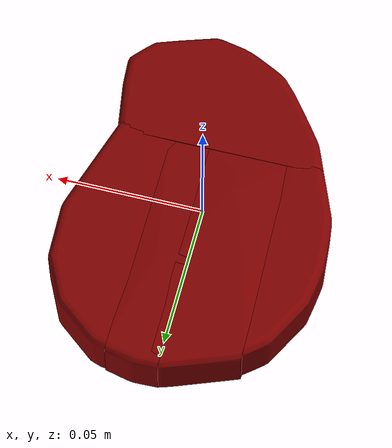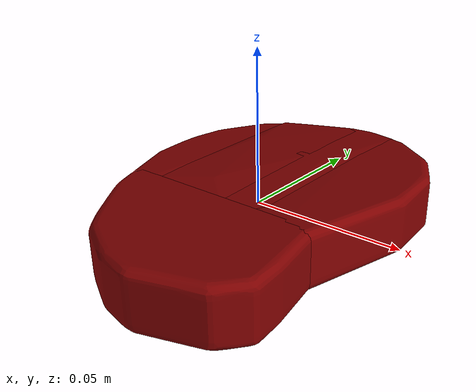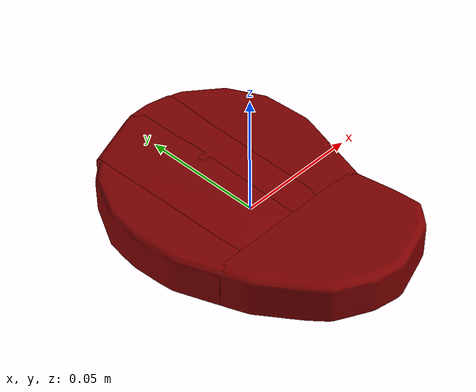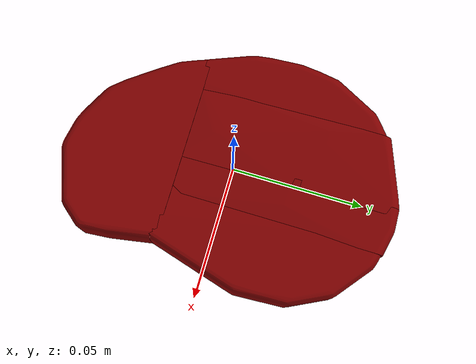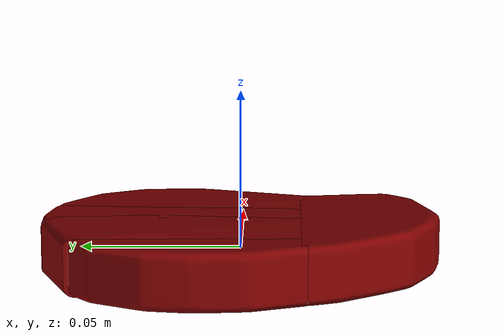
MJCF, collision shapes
<?xml version='1.0' encoding='utf-8'?>
<mujoco model="steak_6">
  <asset>
    <mesh file="visual/model_normalized_0.obj" name="model_normalized_0_vis" scale="0.12499999999999999 0.12499999999999999 0.12499999999999999" refquat="0.7071067811865475 0.0 0.0 -0.7071067811865475" />
    <texture type="2d" name="image0" file="visual/image0.png" />
    <material name="ma_Steak" texture="image0" specular="0.5" shininess="0.25" />
    <mesh file="collision/collision_mesh_collision_0.obj" name="steak_collision_mesh_0" scale="0.12499999999999999 0.12499999999999999 0.12499999999999999" refquat="0.7071067811865475 0.0 0.0 -0.7071067811865475" />
    <mesh file="collision/collision_mesh_collision_1.obj" name="steak_collision_mesh_1" scale="0.12499999999999999 0.12499999999999999 0.12499999999999999" refquat="0.7071067811865475 0.0 0.0 -0.7071067811865475" />
    <mesh file="collision/collision_mesh_collision_2.obj" name="steak_collision_mesh_2" scale="0.12499999999999999 0.12499999999999999 0.12499999999999999" refquat="0.7071067811865475 0.0 0.0 -0.7071067811865475" />
    <mesh file="collision/collision_mesh_collision_3.obj" name="steak_collision_mesh_3" scale="0.12499999999999999 0.12499999999999999 0.12499999999999999" refquat="0.7071067811865475 0.0 0.0 -0.7071067811865475" />
    <mesh file="collision/collision_mesh_collision_4.obj" name="steak_collision_mesh_4" scale="0.12499999999999999 0.12499999999999999 0.12499999999999999" refquat="0.7071067811865475 0.0 0.0 -0.7071067811865475" />
    </asset>
  <default>
    <default class="region">
      <geom group="1" conaffinity="0" contype="0" rgba="0 1 0 0" />
      </default>
    <default class="collision">
      <geom group="0" rgba="0.5 0 0 0.5" density="1000.0" />
      </default>
    </default>
  <worldbody>
    <body>
      <body name="object">
        <geom solimp="0.998 0.998 0.001" solref="0.001 1" density="100" friction="0.95 0.3 0.1" type="mesh" mesh="model_normalized_0_vis" conaffinity="0" contype="0" group="1" material="ma_Steak" />
        <geom class="region" name="reg_bbox" type="box" pos="0.0003700756250000006 1.720562500000244e-05 0.0" size="0.043866539999999996 0.061628923749999995 0.009099989999999999" />
        <geom mesh="steak_collision_mesh_0" type="mesh" class="collision" />
        <geom mesh="steak_collision_mesh_1" type="mesh" class="collision" />
        <geom mesh="steak_collision_mesh_2" type="mesh" class="collision" />
        <geom mesh="steak_collision_mesh_3" type="mesh" class="collision" />
        <geom mesh="steak_collision_mesh_4" type="mesh" class="collision" />
        </body>
      <site rgba="0 0 0 0" size="0.005" pos="0 0 -0.00909999" name="bottom_site" /><site rgba="0 0 0 0" size="0.005" pos="0 0 0.00909999" name="top_site" /><site rgba="0 0 0 0" size="0.005" pos="0.061646129 0.061646129 0" name="horizontal_radius_site" /></body>
    </worldbody>
  </mujoco>
